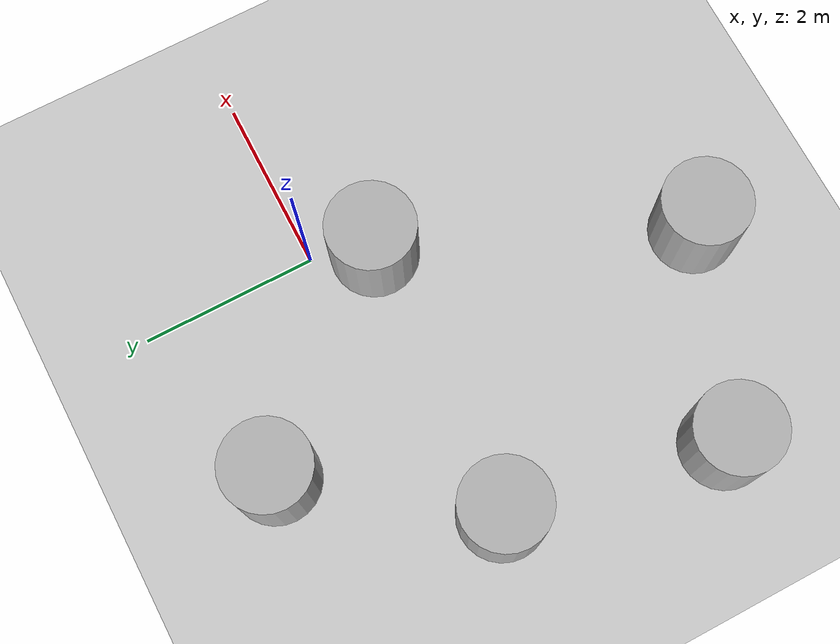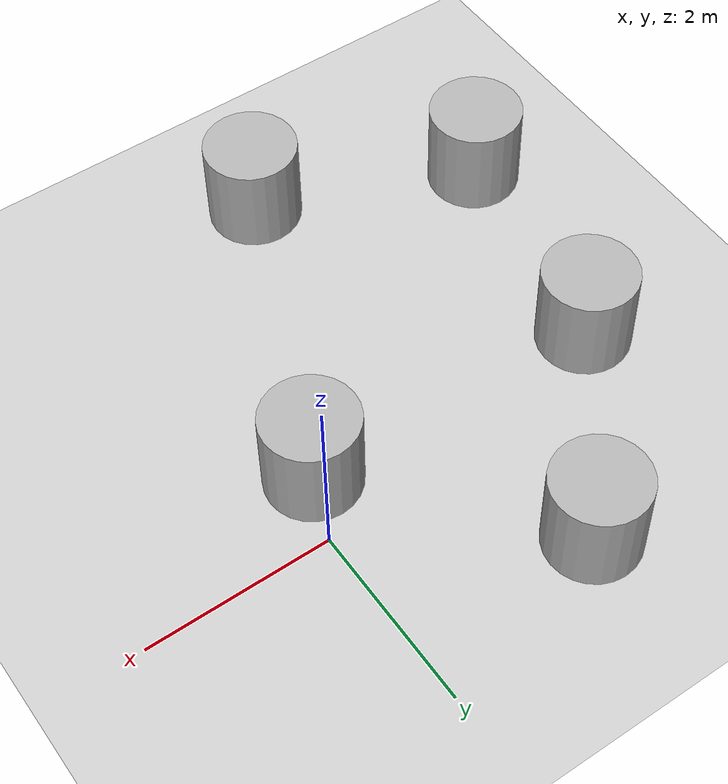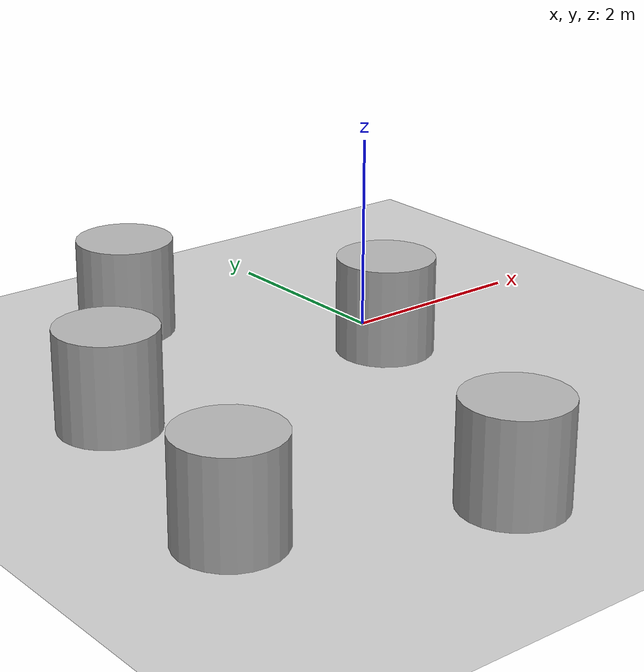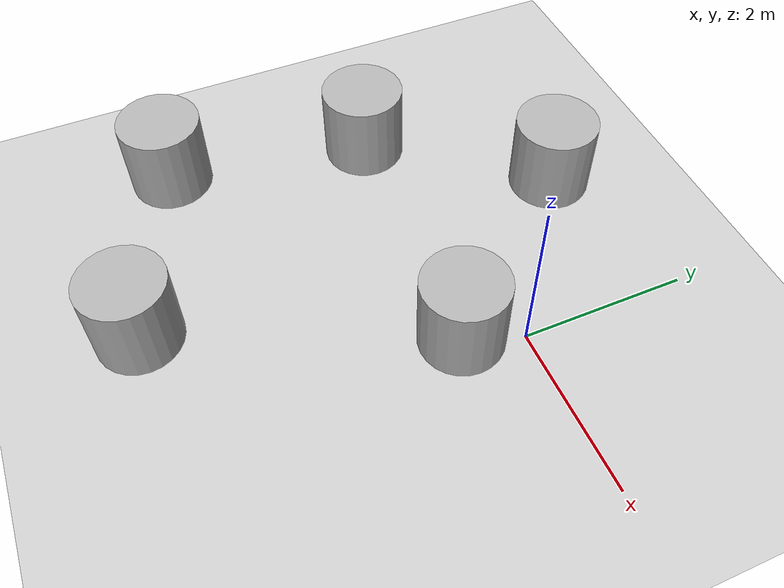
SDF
<sdf version='1.10'>
  <world name='default'>
    <physics type='ode'>
      <real_time_update_rate>1000</real_time_update_rate>
      <max_step_size>0.001</max_step_size>
      <real_time_factor>1</real_time_factor>
      <ode>
        <solver>
          <type>quick</type>
          <iters>150</iters>
          <precon_iters>0</precon_iters>
          <sor>1.3999999999999999</sor>
          <use_dynamic_moi_rescaling>true</use_dynamic_moi_rescaling>
        </solver>
        <constraints>
          <cfm>1.0000000000000001e-05</cfm>
          <erp>0.20000000000000001</erp>
          <contact_max_correcting_vel>2000</contact_max_correcting_vel>
          <contact_surface_layer>0.01</contact_surface_layer>
        </constraints>
      </ode>
    </physics>
    <plugin name='gz::sim::systems::Physics' filename='gz-sim-physics-system'/>
    <plugin name='gz::sim::systems::UserCommands' filename='gz-sim-user-commands-system'/>
    <plugin name='gz::sim::systems::SceneBroadcaster' filename='gz-sim-scene-broadcaster-system'/>
    <plugin name='gz::sim::systems::Sensors' filename='gz-sim-sensors-system'>
      <render_engine>ogre2</render_engine>
    </plugin>
    <plugin name='gz::sim::systems::Imu' filename='gz-sim-imu-system'/>
    <plugin name='ignition::gazebo::systems::NavSat' filename='ignition-gazebo-navsat-system'/>
    <spherical_coordinates>
      <surface_model>EARTH_WGS84</surface_model>
      <world_frame_orientation>ENU</world_frame_orientation>
      <latitude_deg>42.359099999999998</latitude_deg>
      <longitude_deg>-83.066500000000005</longitude_deg>
      <elevation>0</elevation>
      <heading_deg>0</heading_deg>
    </spherical_coordinates>
    <gravity>0 0 -9.8000000000000007</gravity>
    <magnetic_field>5.5644999999999998e-06 2.2875799999999999e-05 -4.2388400000000002e-05</magnetic_field>
    <atmosphere type='adiabatic'/>
    <scene>
      <ambient>0.400000006 0.400000006 0.400000006 1</ambient>
      <background>0.699999988 0.699999988 0.699999988 1</background>
      <shadows>true</shadows>
    </scene>
    <include>
      <uri>https://fuel.gazebosim.org/1.0/OpenRobotics/models/Ground Plane</uri>
      <name>ground_plane</name>
      <pose>0 0 0 0 0 0</pose>
    </include>
    <model name='turtlebot3_world'>
      <static>true</static>
      <pose>0 0 0 0 0 0</pose>
      <self_collide>false</self_collide>
    </model>
    <model name='cylinder'>
      <pose>-2.0282120285848624 1.4124788713388898 0.49999942638036005 1.8623399311809851e-19 6.3776192434537365e-19 4.2965765576256456e-22</pose>
      <link name='cylinder_link'>
        <inertial>
          <inertia>
            <ixx>0.14580000000000001</ixx>
            <ixy>0</ixy>
            <ixz>0</ixz>
            <iyy>0.14580000000000001</iyy>
            <iyz>0</iyz>
            <izz>0.125</izz>
          </inertia>
          <mass>1</mass>
          <pose>0 0 0 0 0 0</pose>
        </inertial>
        <collision name='cylinder_collision'>
          <geometry>
            <cylinder>
              <radius>0.5</radius>
              <length>1</length>
            </cylinder>
          </geometry>
          <surface>
            <friction>
              <ode/>
            </friction>
            <bounce/>
            <contact/>
          </surface>
        </collision>
        <visual name='cylinder_visual'>
          <geometry>
            <cylinder>
              <radius>0.5</radius>
              <length>1</length>
            </cylinder>
          </geometry>
          <material>
            <ambient>0.300000012 0.300000012 0.300000012 1</ambient>
            <diffuse>0.699999988 0.699999988 0.699999988 1</diffuse>
            <specular>1 1 1 1</specular>
          </material>
        </visual>
        <pose>0 0 0 0 0 0</pose>
        <enable_wind>false</enable_wind>
      </link>
      <static>false</static>
      <self_collide>false</self_collide>
    </model>
    <model name='cylinder_0'>
      <pose>-3.4921728245893551 -0.5330330792409308 0.49999942638036005 1.3347020782969747e-19 7.0164031614071109e-20 2.4828777308819303e-20</pose>
      <link name='cylinder_link'>
        <inertial>
          <inertia>
            <ixx>0.14580000000000001</ixx>
            <ixy>0</ixy>
            <ixz>0</ixz>
            <iyy>0.14580000000000001</iyy>
            <iyz>0</iyz>
            <izz>0.125</izz>
          </inertia>
          <mass>1</mass>
          <pose>0 0 0 0 0 0</pose>
        </inertial>
        <collision name='cylinder_collision'>
          <geometry>
            <cylinder>
              <radius>0.5</radius>
              <length>1</length>
            </cylinder>
          </geometry>
          <surface>
            <friction>
              <ode/>
            </friction>
            <bounce/>
            <contact/>
          </surface>
        </collision>
        <visual name='cylinder_visual'>
          <geometry>
            <cylinder>
              <radius>0.5</radius>
              <length>1</length>
            </cylinder>
          </geometry>
          <material>
            <ambient>0.300000012 0.300000012 0.300000012 1</ambient>
            <diffuse>0.699999988 0.699999988 0.699999988 1</diffuse>
            <specular>1 1 1 1</specular>
          </material>
        </visual>
        <pose>0 0 0 0 0 0</pose>
        <enable_wind>false</enable_wind>
      </link>
      <static>false</static>
      <self_collide>false</self_collide>
    </model>
    <model name='cylinder_1'>
      <pose>-1.6882434683254885 -3.9317827006357531 0.49999942638036005 1.0263950660399495e-19 2.6848402760639256e-19 8.2007256225776306e-23</pose>
      <link name='cylinder_link'>
        <inertial>
          <inertia>
            <ixx>0.14580000000000001</ixx>
            <ixy>0</ixy>
            <ixz>0</ixz>
            <iyy>0.14580000000000001</iyy>
            <iyz>0</iyz>
            <izz>0.125</izz>
          </inertia>
          <mass>1</mass>
          <pose>0 0 0 0 0 0</pose>
        </inertial>
        <collision name='cylinder_collision'>
          <geometry>
            <cylinder>
              <radius>0.5</radius>
              <length>1</length>
            </cylinder>
          </geometry>
          <surface>
            <friction>
              <ode/>
            </friction>
            <bounce/>
            <contact/>
          </surface>
        </collision>
        <visual name='cylinder_visual'>
          <geometry>
            <cylinder>
              <radius>0.5</radius>
              <length>1</length>
            </cylinder>
          </geometry>
          <material>
            <ambient>0.300000012 0.300000012 0.300000012 1</ambient>
            <diffuse>0.699999988 0.699999988 0.699999988 1</diffuse>
            <specular>1 1 1 1</specular>
          </material>
        </visual>
        <pose>0 0 0 0 0 0</pose>
        <enable_wind>false</enable_wind>
      </link>
      <static>false</static>
      <self_collide>false</self_collide>
    </model>
    <model name='cylinder_2'>
      <pose>-0.26914368136983846 -0.66670079174906693 0.49999942638036005 4.1976104867055991e-20 -7.0105567578173232e-20 2.0295182187288589e-20</pose>
      <link name='cylinder_link'>
        <inertial>
          <inertia>
            <ixx>0.14580000000000001</ixx>
            <ixy>0</ixy>
            <ixz>0</ixz>
            <iyy>0.14580000000000001</iyy>
            <iyz>0</iyz>
            <izz>0.125</izz>
          </inertia>
          <mass>1</mass>
          <pose>0 0 0 0 0 0</pose>
        </inertial>
        <collision name='cylinder_collision'>
          <geometry>
            <cylinder>
              <radius>0.5</radius>
              <length>1</length>
            </cylinder>
          </geometry>
          <surface>
            <friction>
              <ode/>
            </friction>
            <bounce/>
            <contact/>
          </surface>
        </collision>
        <visual name='cylinder_visual'>
          <geometry>
            <cylinder>
              <radius>0.5</radius>
              <length>1</length>
            </cylinder>
          </geometry>
          <material>
            <ambient>0.300000012 0.300000012 0.300000012 1</ambient>
            <diffuse>0.699999988 0.699999988 0.699999988 1</diffuse>
            <specular>1 1 1 1</specular>
          </material>
        </visual>
        <pose>0 0 0 0 0 0</pose>
        <enable_wind>false</enable_wind>
      </link>
      <static>false</static>
      <self_collide>false</self_collide>
    </model>
    <model name='cylinder_3'>
      <pose>-3.9300306749265501 -2.9966834095841253 0.49999942638036005 1.6984412385386607e-19 -2.3899040506571501e-19 -1.1217734156811615e-20</pose>
      <link name='cylinder_link'>
        <inertial>
          <inertia>
            <ixx>0.14580000000000001</ixx>
            <ixy>0</ixy>
            <ixz>0</ixz>
            <iyy>0.14580000000000001</iyy>
            <iyz>0</iyz>
            <izz>0.125</izz>
          </inertia>
          <mass>1</mass>
          <pose>0 0 0 0 0 0</pose>
        </inertial>
        <collision name='cylinder_collision'>
          <geometry>
            <cylinder>
              <radius>0.5</radius>
              <length>1</length>
            </cylinder>
          </geometry>
          <surface>
            <friction>
              <ode/>
            </friction>
            <bounce/>
            <contact/>
          </surface>
        </collision>
        <visual name='cylinder_visual'>
          <geometry>
            <cylinder>
              <radius>0.5</radius>
              <length>1</length>
            </cylinder>
          </geometry>
          <material>
            <ambient>0.300000012 0.300000012 0.300000012 1</ambient>
            <diffuse>0.699999988 0.699999988 0.699999988 1</diffuse>
            <specular>1 1 1 1</specular>
          </material>
        </visual>
        <pose>0 0 0 0 0 0</pose>
        <enable_wind>false</enable_wind>
      </link>
      <static>false</static>
      <self_collide>false</self_collide>
    </model>
    <light name='sun' type='directional'>
      <pose>0 0 10 0 0 0</pose>
      <cast_shadows>true</cast_shadows>
      <intensity>1</intensity>
      <direction>-0.5 0.10000000000000001 -0.90000000000000002</direction>
      <diffuse>0.800000012 0.800000012 0.800000012 1</diffuse>
      <specular>0.200000003 0.200000003 0.200000003 1</specular>
      <attenuation>
        <range>1000</range>
        <linear>0.01</linear>
        <constant>0.90000000000000002</constant>
        <quadratic>0.001</quadratic>
      </attenuation>
      <spot>
        <inner_angle>0</inner_angle>
        <outer_angle>0</outer_angle>
        <falloff>0</falloff>
      </spot>
    </light>
  </world>
</sdf>
